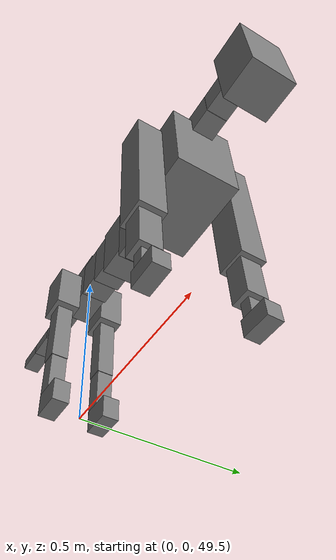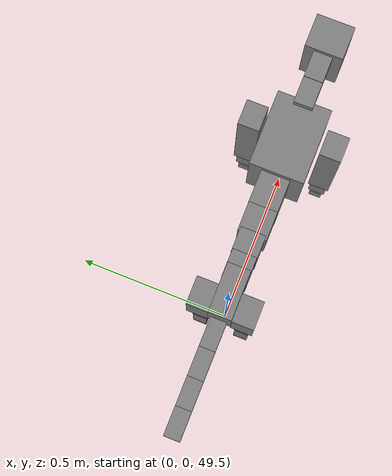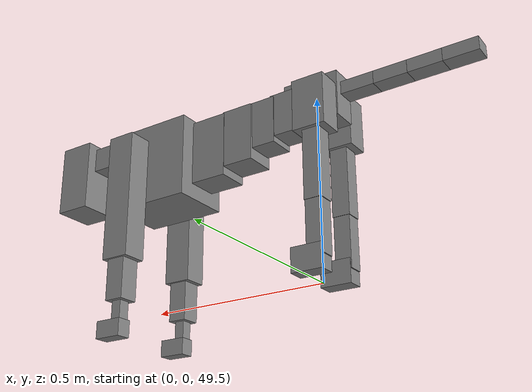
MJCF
<mujoco model="dog">

    <default>
        <joint armature="0.02" stiffness="1" damping="0.2" limited="true"/>
        <geom condim="3" friction="1 0.05 0.05" margin="0.01"/>
        <motor ctrllimited="true" ctrlrange="-1.0 1.0" forcelimited="true" gear="50"/>
    </default>

    <compiler inertiafromgeom="true" angle="radian"/>

    <option timestep="0.016" iterations="50" tolerance="1e-10" solver="Newton" jacobian="dense" cone="pyramidal"/>

    <size nconmax="20000" njmax="60000" nstack="5000000"/>
    <visual>
        <map force="0.1" zfar="30"/>
        <rgba haze="0.15 0.25 0.35 1"/>
        <quality shadowsize="2048"/>
        <global offwidth="800" offheight="800"/>
    </visual>

    <asset>
        <texture type="skybox" builtin="gradient" rgb1="0.3 0.5 0.7" rgb2="0 0 0" width="512" height="512"/>
        <texture name="texplane" type="2d" builtin="checker" rgb1=".2 .3 .4" rgb2=".1 0.15 0.2" width="512" height="512"
                 mark="cross" markrgb=".8 .8 .8"/>
        <texture name="texgeom" type="cube" builtin="flat" mark="cross" width="127" height="1278" rgb1="0.8 0.6 0.4"
                 rgb2="0.8 0.6 0.4" markrgb="1 1 1" random="0.01"/>

        <material name="matplane" reflectance="0.3" texture="texplane" texrepeat="1 1" texuniform="true"/>
        <material name="matgeom" texture="texgeom" texuniform="true" rgba="0.8 0.6 .4 1"/>
    </asset>

    <worldbody>
        <geom name="floor" pos="0 0 0" size="0 0 .25" type="plane" material="matplane" condim="3"/>

        <light directional="false" diffuse=".2 .2 .2" specular="0 0 0" pos="0 0 5" dir="0 0 -1" castshadow="false"/>
        <light mode="targetbodycom" target="torso" directional="false" diffuse=".8 .8 .8" specular="0.3 0.3 0.3"
               pos="0 0 4.0" dir="0 0 -1"/>

        <body name="root" pos="0 0 50">
            <freejoint name="root_1"/>
            <geom type="box" pos="0 0 -0.02" size="0.0774  0.0358  0.063" density="2030"/>

            <body name="spine1" pos="0.054 0 0">
                <joint name="spine1_y" axis="0 1 0" range="0 0.7" limited="true"/>
                <geom type="box" pos="0.02375 0 -0.03" size="0.04375  0.0375  0.05985" density="2030"/>

                <body name="spine2" pos="0.0612 0 0">
                    <joint name="spine2_y" axis="0 1 0" range="-0.15 0.15" limited="true"/>
                    <geom type="box" pos="0.03555  0  -0.04" size="0.04055  0.039  0.06615" density="2030"/>

                    <body name="spine3" pos="0.0730 0 0">
                        <joint name="spine3_y" axis="0 1 0" range="-0.15 0.15" limited="true"/>
                        <geom type="box" pos="0.03555  0  -0.057" size="0.04555  0.0445  0.081" density="2030"/>

                        <body name="spine4" pos="0.0780 0 0">
                            <joint name="spine4_y" axis="0 1 0" range="-0.15 0.15" limited="true"/>
                            <geom type="box" pos="0.05265  0  -0.07" size="0.05265  0.045  0.09135" density="2030"/>

                            <body name="torso" pos="0.1082 0 0">
                                <joint name="torso_y" axis="0 1 0" range="-0.15 0.15" limited="true"/>
                                <geom type="box" pos="0.11925  0  -0.085" size="0.11925  0.085  0.11745"
                                      density="2030"/>

                                <body name="neck1" pos="0.2160  0   0.0180">
                                    <joint name="neck1_y" axis="0 1 0" range="-1.2  -1" limited="true"/>
                                    <geom type="box" pos="0.0423  0  0" size="0.0423  0.03  0.036" density="2325"/>

                                    <body name="neck2" pos="0.0853  0  0">
                                        <joint name="neck2_y" axis="0 1 0" range="0.1  0" limited="true"/>
                                        <geom type="box" pos="0.0423  0  0" size="0.0423  0.03  0.036" density="2325"/>

                                        <body name="head" pos="0.0853  0  0">
                                            <joint name="head_y" axis="0 1 0" range="-0.3  -0.2" limited="true"/>
                                            <geom type="box" pos="0.0531  0  -0.055" size="0.0531  0.06  0.1044"
                                                  density="4030"/>

                                        </body>
                                    </body>
                                </body>

                                <body name="front_shoulder" pos="0.156  0   -0.0480">
                                    <joint name="front_shoulder_y" axis="0 1 0" range="-1 1.5" limited="true"/>
                                    <geom type="box" pos="0 0.13 -0.1510" size="0.0402  0.0344  0.1777" density="1158"/>
                                    <geom type="box" pos="0 -0.13 -0.1510" size="0.0402  0.0344  0.1777"
                                          density="1158"/>

                                    <body name="front_elbow" pos="0  0  -0.3020">
                                        <joint name="front_elbow_y" axis="0 1 0" range="-2 0" limited="true"/>
                                        <geom type="box" pos="0 0.13 -0.0693" size="0.0269  0.0275  0.0693"
                                              density="1081"/>
                                        <geom type="box" pos="0 -0.13 -0.0693" size="0.0269  0.0275  0.0693"
                                              density="1081"/>

                                        <body name="front_wrist" pos="0  0  -0.1385">
                                            <joint name="front_wrist_y" axis="0 1 0" range="-0.2 0" limited="true"/>
                                            <geom type="box" pos="0 0.13 -0.0321" size="0.0140  0.0156  0.0452"
                                                  density="1664"/>
                                            <geom type="box" pos="0 -0.13 -0.0321" size="0.0140  0.0156  0.0452"
                                                  density="1664"/>

                                            <body name="front_finger_end" pos="0  0  -0.0641">
                                                <joint name="front_finger_y" axis="0 1 0" range="-0.4 1"
                                                       limited="true"/>
                                                <geom type="box" pos="0.0206  0.13  -0.0082"
                                                      size="0.0378  0.0206  0.0232" density="1515"/>
                                                <geom type="box" pos="0.0206  -0.13  -0.0082"
                                                      size="0.0378  0.0206  0.0232" density="1515"/>

                                            </body>

                                        </body>
                                    </body>
                                </body>

                            </body>
                        </body>
                    </body>
                </body>
            </body>

            <body name="back_hip" pos="-0.03 0 -0.018">
                <joint name="back_hip_y" axis="0 1 0" range="-1.5 0.3" limited="true"/>
                <geom type="box" pos="0 0.07 -0.0462" size="0.0440  0.0345  0.0690" density="1154"/>
                <geom type="box" pos="0 -0.07 -0.0462" size="0.0440  0.0345  0.0690" density="1154"/>

                <body name="back_knee" pos="0  0  -0.0925">
                    <joint name="back_knee_y" axis="0 1 0" range="0 2.8" limited="true"/>
                    <geom type="box" pos="0 0.07 -0.0960" size="0.0237  0.0234  0.1115" density="1227"/>
                    <geom type="box" pos="0 -0.07 -0.0960" size="0.0237  0.0234  0.1115" density="1227"/>

                    <body name="back_ankle" pos="0  0  -0.1919">
                        <joint name="back_ankle_y" axis="0 1 0" range="-2.2 0" limited="true"/>
                        <geom type="box" pos="0 0.07 -0.0713" size="0.0220  0.0220  0.0826" density="1284"/>
                        <geom type="box" pos="0 -0.07 -0.0713" size="0.0220  0.0220  0.0826" density="1284"/>

                        <body name="back_toe_end" pos="0  0  -0.1426">
                            <joint name="back_toe_y" axis="0 1 0" range="-0.4 1" limited="true"/>
                            <geom type="box" pos="0.0228  0.07  -0.0169" size="0.0418  0.0228  0.0319" density="1515"/>
                            <geom type="box" pos="0.0228  -0.07  -0.0169" size="0.0418  0.0228  0.0319" density="1515"/>

                        </body>
                    </body>
                </body>
            </body>

            <body name="tail1" pos="-0.074 0 -0.006">
                <joint name="tail1_y" axis="0 1 0" range="-0.2 0.2" limited="true"/>
                <geom type="box" pos="-0.0536  0  0" size="0.045  0.025  0.0175" density="1587"/>

                <body name="tail2" pos="-0.09 0 0">
                    <joint name="tail2_y" axis="0 1 0" range="-0.2 0.2" limited="true"/>
                    <geom type="box" pos="-0.0536  0  0" size="0.045  0.025  0.0175" density="1587"/>

                    <body name="tail3" pos="-0.09 0 0">
                        <joint name="tail3_y" axis="0 1 0" range="-0.2 0.2" limited="true"/>
                        <geom type="box" pos="-0.0536  0  0" size="0.045  0.025  0.0175" density="1587"/>

                        <body name="tail4" pos="-0.09 0 0">
                            <joint name="tail4_y" axis="0 1 0" range="-0.2 0.2" limited="true"/>
                            <geom type="box" pos="-0.0536  0  0" size="0.045  0.025  0.0175" density="1587"/>

                        </body>
                    </body>
                </body>
            </body>
        </body>
    </worldbody>

    <actuator>
        <motor joint="spine1_y" forcerange="-150 150     "/>
        <motor joint="spine2_y" forcerange="-150 150     "/>
        <motor joint="spine3_y" forcerange="-150 150     "/>
        <motor joint="spine4_y" forcerange="-150 150     "/>
        <motor joint="torso_y" forcerange="-150 150     "/>
        <motor joint="neck1_y" forcerange="-100 100       "/>
        <motor joint="neck2_y" forcerange="-100 100       "/>
        <motor joint="head_y" forcerange="-150 150       "/>
        <motor joint="front_shoulder_y" forcerange="-144.72 184.51"/>
        <motor joint="front_elbow_y" forcerange="-195.01 104.69"/>
        <motor joint="front_wrist_y" forcerange="-59.87 64.83"/>
        <motor joint="front_finger_y" forcerange="-42.86 27.23"/>
        <motor joint="back_hip_y" forcerange="-345.85 313.91"/>
        <motor joint="back_knee_y" forcerange="-244.93 295.44"/>
        <motor joint="back_angle_y" forcerange="-147.36 105.35"/>
        <motor joint="back_toe_y" forcerange="-66.81 35.77"/>
        <motor joint="tail1_y" forcerange="-50 50     "/>
        <motor joint="tail2_y" forcerange="-50 50     "/>
        <motor joint="tail3_y" forcerange="-50 50     "/>
        <motor joint="tail4_y" forcerange="-50 50     "/>
    </actuator>
</mujoco>
